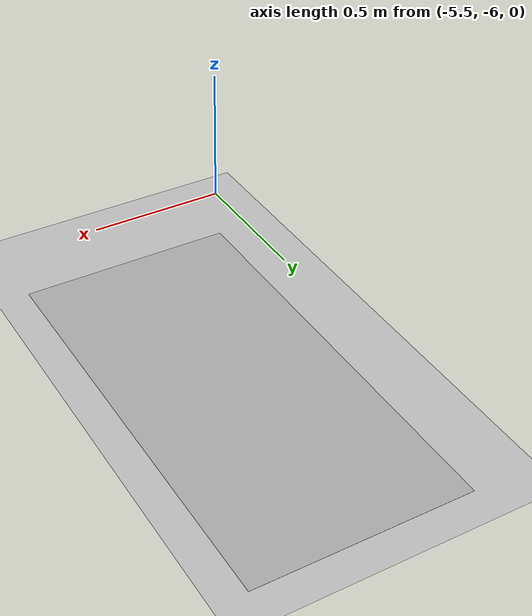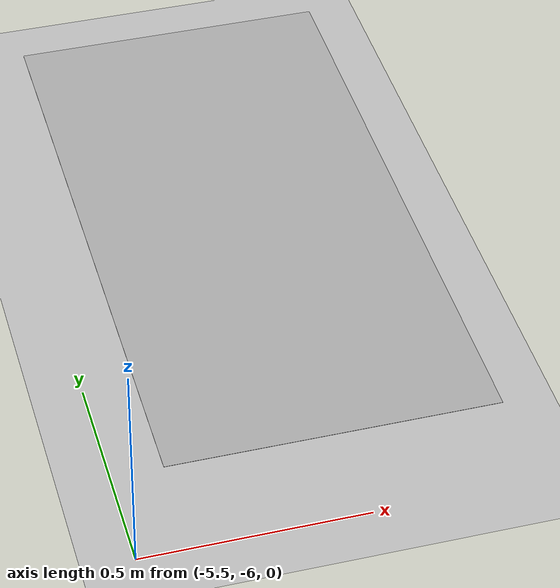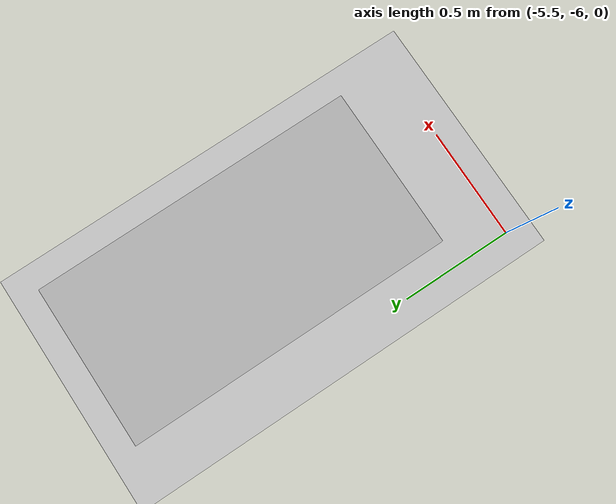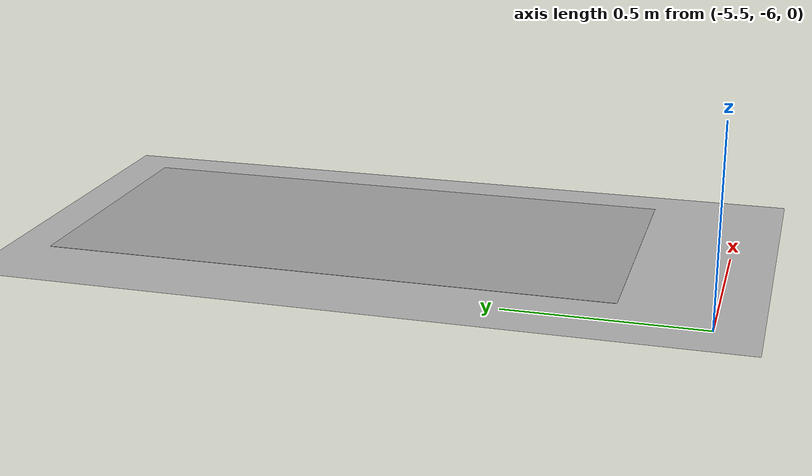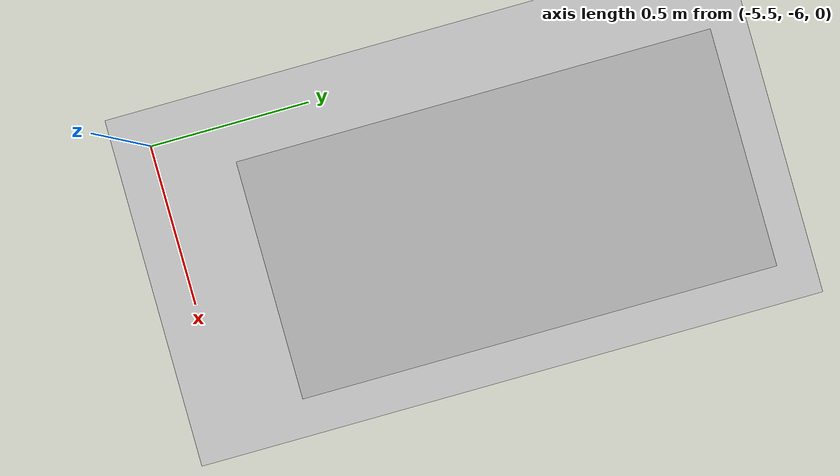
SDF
<sdf version="1.6">
 <world name="default">
  <model name="ground_plane">
   <static>1</static>
   <link name="link">
    <collision name="collision">
     <geometry><plane><normal>0 0 1</normal><size>100 100</size></plane></geometry>
     <surface><friction><ode><mu>100</mu><mu2>50</mu2></ode></friction></surface>
    </collision>
    <visual name="visual">
     <cast_shadows>0</cast_shadows>
     <geometry><plane><normal>0 0 1</normal><size>100 100</size></plane></geometry>
     <material>
      <script><uri>file://media/materials/scripts/gazebo.material</uri><name>Gazebo/Grey</name></script>
     </material>
    </visual>
   </link>
  </model>
  <model name="N_1">
   <static>1</static>
   <link name="link">
    <pose>0 0 1e-05 0 -0 0</pose>
    <collision name="collision">
     <geometry><plane><normal>0 0 1</normal><size>1.5 0.75</size></plane></geometry>
     <surface><friction><ode><mu>100</mu><mu2>50</mu2></ode></friction></surface>
    </collision>
    <visual name="visual">
     <cast_shadows>0</cast_shadows>
     <geometry><plane><normal>0 0 1</normal><size>0.75 1.5</size></plane></geometry>
     <material><script><uri>model://N/materials/scripts/N.material</uri><name>N/ground</name></script></material>
    </visual>
   </link>
   <pose>-5.00961 -5.01248 0 0 -0 0</pose>
  </model>
 </world>
</sdf>
